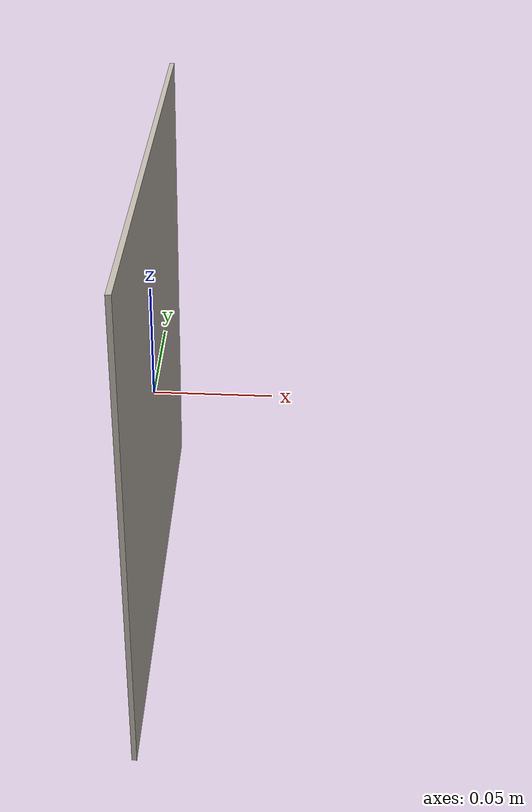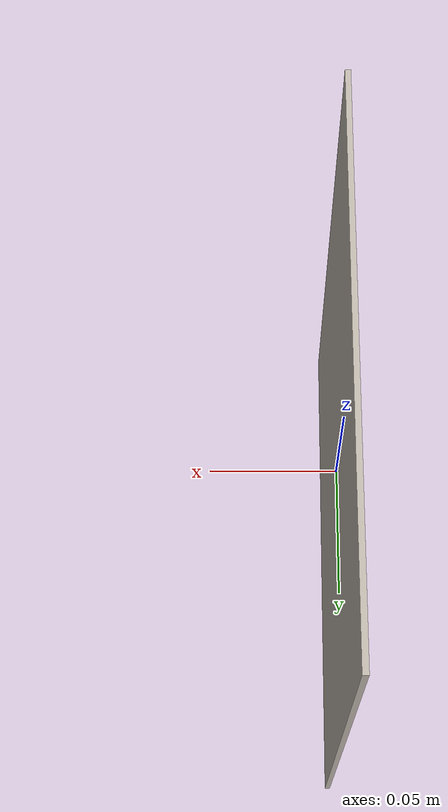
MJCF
<mujoco model="AprilTag_0001">
  <default>
    <default class="visual">
      <geom group="2" type="mesh" contype="0" conaffinity="0"/>
    </default>
    <default class="collision">
      <geom group="3" type="mesh"/>
    </default>
  </default>
  <asset>
    <texture type="2d" name="material_AprilTag_0001_0" file="material_AprilTag_0001_0.png"/>
    <material name="material_AprilTag_0001_0" texture="material_AprilTag_0001_0" specular="0.4000000000000001" shininess="0.001"/>
    <mesh file="AprilTag_0001.obj"/>
  </asset>
  <worldbody>
    <body name="AprilTag_0001">
      <geom material="material_AprilTag_0001_0" mesh="AprilTag_0001" class="visual"/>
      <geom mesh="AprilTag_0001" class="collision"/>
    </body>
  </worldbody>
</mujoco>
